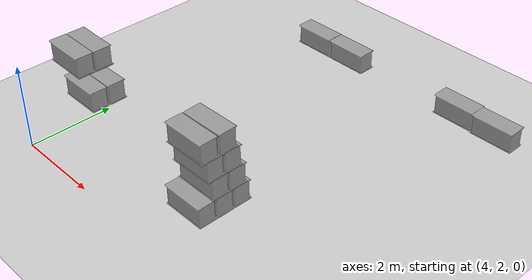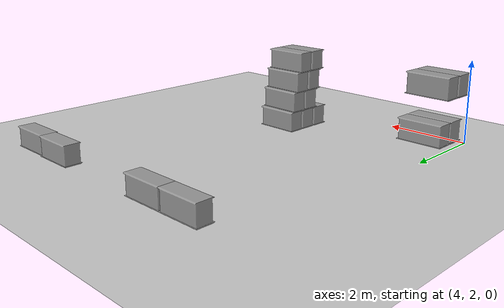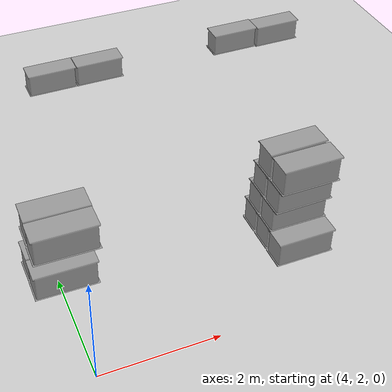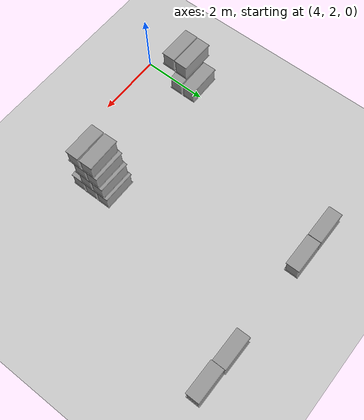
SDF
<sdf version="1.7">
 <world name="default">
  <model name="ground_plane">
   <static>1</static>
   <link name="link">
    <collision name="collision">
     <geometry><plane><normal>0 0 1</normal><size>100 100</size></plane></geometry>
     <surface><friction><ode><mu>100</mu><mu2>50</mu2></ode></friction></surface>
    </collision>
    <visual name="visual">
     <cast_shadows>0</cast_shadows>
     <geometry><plane><normal>0 0 1</normal><size>100 100</size></plane></geometry>
     <material>
      <script><uri>file://media/materials/scripts/gazebo.material</uri><name>Gazebo/Grey</name></script>
     </material>
    </visual>
   </link>
  </model>
  <model name="my_robot52">
   <link name="link_0">
    <inertial>
     <mass>1</mass>
     <inertia>
      <ixx>0.166667</ixx>
      <ixy>0</ixy>
      <ixz>0</ixz>
      <iyy>0.166667</iyy>
      <iyz>0</iyz>
      <izz>0.166667</izz>
     </inertia>
    </inertial>
    <visual name="visual">
     <geometry><mesh><uri>/home/cyun/cotton_box.stl</uri><scale>1 1 1</scale></mesh></geometry>
     <material>
      <lighting>1</lighting>
      <script><uri>file://media/materials/scripts/gazebo.material</uri><name>Gazebo/Grey</name></script>
      <shader type="pixel"><normal_map>__default__</normal_map></shader>
      <ambient>0.3 0.3 0.3 1</ambient>
      <diffuse>0.7 0.7 0.7 1</diffuse>
      <specular>0.01 0.01 0.01 1</specular>
      <emissive>0 0 0 1</emissive>
     </material>
    </visual>
    <collision name="collision">
     <geometry><mesh><uri>/home/cyun/cotton_box.stl</uri><scale>1 1 1</scale></mesh></geometry>
     <surface>
      <friction>
       <ode><mu>1</mu><mu2>1</mu2><fdir1>0 0 0</fdir1><slip1>0</slip1><slip2>0</slip2></ode>
       <torsional>
        <coefficient>1</coefficient>
        <patch_radius>0</patch_radius>
        <surface_radius>0</surface_radius>
        <use_patch_radius>1</use_patch_radius>
        <ode><slip>0</slip></ode>
       </torsional>
      </friction>
      <bounce><restitution_coefficient>0</restitution_coefficient><threshold>1e+06</threshold></bounce>
      <contact>
       <collide_without_contact>0</collide_without_contact>
       <collide_without_contact_bitmask>1</collide_without_contact_bitmask>
       <collide_bitmask>1</collide_bitmask>
       <ode>
        <soft_cfm>0</soft_cfm>
        <soft_erp>0.2</soft_erp>
        <kp>1e+13</kp>
        <kd>1</kd>
        <max_vel>0.01</max_vel>
        <min_depth>0</min_depth>
       </ode>
       <bullet>
        <split_impulse>1</split_impulse>
        <split_impulse_penetration_threshold>-0.01</split_impulse_penetration_threshold>
        <soft_cfm>0</soft_cfm>
        <soft_erp>0.2</soft_erp>
        <kp>1e+13</kp>
        <kd>1</kd>
       </bullet>
      </contact>
     </surface>
    </collision>
   </link>
   <static>0</static>
   <pose>4.00125 3.5004 0.50998 5e-06 3.8e-05 1.56337</pose>
  </model>
  <model name="my_robot53">
   <link name="link_0">
    <inertial>
     <mass>1</mass>
     <inertia>
      <ixx>0.166667</ixx>
      <ixy>0</ixy>
      <ixz>0</ixz>
      <iyy>0.166667</iyy>
      <iyz>0</iyz>
      <izz>0.166667</izz>
     </inertia>
    </inertial>
    <visual name="visual">
     <geometry><mesh><uri>/home/cyun/cotton_box.stl</uri><scale>1 1 1</scale></mesh></geometry>
     <material>
      <lighting>1</lighting>
      <script><uri>file://media/materials/scripts/gazebo.material</uri><name>Gazebo/Grey</name></script>
      <shader type="pixel"><normal_map>__default__</normal_map></shader>
      <ambient>0.3 0.3 0.3 1</ambient>
      <diffuse>0.7 0.7 0.7 1</diffuse>
      <specular>0.01 0.01 0.01 1</specular>
      <emissive>0 0 0 1</emissive>
     </material>
    </visual>
    <collision name="collision">
     <geometry><mesh><uri>/home/cyun/cotton_box.stl</uri><scale>1 1 1</scale></mesh></geometry>
     <surface>
      <friction>
       <ode><mu>1</mu><mu2>1</mu2><fdir1>0 0 0</fdir1><slip1>0</slip1><slip2>0</slip2></ode>
       <torsional>
        <coefficient>1</coefficient>
        <patch_radius>0</patch_radius>
        <surface_radius>0</surface_radius>
        <use_patch_radius>1</use_patch_radius>
        <ode><slip>0</slip></ode>
       </torsional>
      </friction>
      <bounce><restitution_coefficient>0</restitution_coefficient><threshold>1e+06</threshold></bounce>
      <contact>
       <collide_without_contact>0</collide_without_contact>
       <collide_without_contact_bitmask>1</collide_without_contact_bitmask>
       <collide_bitmask>1</collide_bitmask>
       <ode>
        <soft_cfm>0</soft_cfm>
        <soft_erp>0.2</soft_erp>
        <kp>1e+13</kp>
        <kd>1</kd>
        <max_vel>0.01</max_vel>
        <min_depth>0</min_depth>
       </ode>
       <bullet>
        <split_impulse>1</split_impulse>
        <split_impulse_penetration_threshold>-0.01</split_impulse_penetration_threshold>
        <soft_cfm>0</soft_cfm>
        <soft_erp>0.2</soft_erp>
        <kp>1e+13</kp>
        <kd>1</kd>
       </bullet>
      </contact>
     </surface>
    </collision>
   </link>
   <static>0</static>
   <pose>4.00282 3.95083 0.509973 5e-06 3e-06 1.58055</pose>
  </model>
  <model name="my_robot67">
   <link name="link_0">
    <inertial>
     <mass>1</mass>
     <inertia>
      <ixx>0.166667</ixx>
      <ixy>0</ixy>
      <ixz>0</ixz>
      <iyy>0.166667</iyy>
      <iyz>0</iyz>
      <izz>0.166667</izz>
     </inertia>
    </inertial>
    <visual name="visual">
     <geometry><mesh><uri>/home/cyun/cotton_box.stl</uri><scale>1 1 1</scale></mesh></geometry>
     <material>
      <lighting>1</lighting>
      <script><uri>file://media/materials/scripts/gazebo.material</uri><name>Gazebo/Grey</name></script>
      <shader type="pixel"><normal_map>__default__</normal_map></shader>
      <ambient>0.3 0.3 0.3 1</ambient>
      <diffuse>0.7 0.7 0.7 1</diffuse>
      <specular>0.01 0.01 0.01 1</specular>
      <emissive>0 0 0 1</emissive>
     </material>
    </visual>
    <collision name="collision">
     <geometry><mesh><uri>/home/cyun/cotton_box.stl</uri><scale>1 1 1</scale></mesh></geometry>
     <surface>
      <friction>
       <ode><mu>1</mu><mu2>1</mu2><fdir1>0 0 0</fdir1><slip1>0</slip1><slip2>0</slip2></ode>
       <torsional>
        <coefficient>1</coefficient>
        <patch_radius>0</patch_radius>
        <surface_radius>0</surface_radius>
        <use_patch_radius>1</use_patch_radius>
        <ode><slip>0</slip></ode>
       </torsional>
      </friction>
      <bounce><restitution_coefficient>0</restitution_coefficient><threshold>1e+06</threshold></bounce>
      <contact>
       <collide_without_contact>0</collide_without_contact>
       <collide_without_contact_bitmask>1</collide_without_contact_bitmask>
       <collide_bitmask>1</collide_bitmask>
       <ode>
        <soft_cfm>0</soft_cfm>
        <soft_erp>0.2</soft_erp>
        <kp>1e+13</kp>
        <kd>1</kd>
        <max_vel>0.01</max_vel>
        <min_depth>0</min_depth>
       </ode>
       <bullet>
        <split_impulse>1</split_impulse>
        <split_impulse_penetration_threshold>-0.01</split_impulse_penetration_threshold>
        <soft_cfm>0</soft_cfm>
        <soft_erp>0.2</soft_erp>
        <kp>1e+13</kp>
        <kd>1</kd>
       </bullet>
      </contact>
     </surface>
    </collision>
   </link>
   <static>0</static>
   <pose>4.00336 3.27687 1.49002 8e-06 5.9e-05 1.56228</pose>
  </model>
  <model name="my_robot68">
   <link name="link_0">
    <inertial>
     <mass>1</mass>
     <inertia>
      <ixx>0.166667</ixx>
      <ixy>0</ixy>
      <ixz>0</ixz>
      <iyy>0.166667</iyy>
      <iyz>0</iyz>
      <izz>0.166667</izz>
     </inertia>
    </inertial>
    <visual name="visual">
     <geometry><mesh><uri>/home/cyun/cotton_box.stl</uri><scale>1 1 1</scale></mesh></geometry>
     <material>
      <lighting>1</lighting>
      <script><uri>file://media/materials/scripts/gazebo.material</uri><name>Gazebo/Grey</name></script>
      <shader type="pixel"><normal_map>__default__</normal_map></shader>
      <ambient>0.3 0.3 0.3 1</ambient>
      <diffuse>0.7 0.7 0.7 1</diffuse>
      <specular>0.01 0.01 0.01 1</specular>
      <emissive>0 0 0 1</emissive>
     </material>
    </visual>
    <collision name="collision">
     <geometry><mesh><uri>/home/cyun/cotton_box.stl</uri><scale>1 1 1</scale></mesh></geometry>
     <surface>
      <friction>
       <ode><mu>1</mu><mu2>1</mu2><fdir1>0 0 0</fdir1><slip1>0</slip1><slip2>0</slip2></ode>
       <torsional>
        <coefficient>1</coefficient>
        <patch_radius>0</patch_radius>
        <surface_radius>0</surface_radius>
        <use_patch_radius>1</use_patch_radius>
        <ode><slip>0</slip></ode>
       </torsional>
      </friction>
      <bounce><restitution_coefficient>0</restitution_coefficient><threshold>1e+06</threshold></bounce>
      <contact>
       <collide_without_contact>0</collide_without_contact>
       <collide_without_contact_bitmask>1</collide_without_contact_bitmask>
       <collide_bitmask>1</collide_bitmask>
       <ode>
        <soft_cfm>0</soft_cfm>
        <soft_erp>0.2</soft_erp>
        <kp>1e+13</kp>
        <kd>1</kd>
        <max_vel>0.01</max_vel>
        <min_depth>0</min_depth>
       </ode>
       <bullet>
        <split_impulse>1</split_impulse>
        <split_impulse_penetration_threshold>-0.01</split_impulse_penetration_threshold>
        <soft_cfm>0</soft_cfm>
        <soft_erp>0.2</soft_erp>
        <kp>1e+13</kp>
        <kd>1</kd>
       </bullet>
      </contact>
     </surface>
    </collision>
   </link>
   <static>0</static>
   <pose>4.01435 3.71927 1.48996 6e-06 2.8e-05 1.5576</pose>
  </model>
  <model name="my_robot76">
   <link name="link_0">
    <inertial>
     <mass>1</mass>
     <inertia>
      <ixx>0.166667</ixx>
      <ixy>0</ixy>
      <ixz>0</ixz>
      <iyy>0.166667</iyy>
      <iyz>0</iyz>
      <izz>0.166667</izz>
     </inertia>
    </inertial>
    <visual name="visual">
     <geometry><mesh><uri>/home/cyun/cotton_box.stl</uri><scale>1 1 1</scale></mesh></geometry>
     <material>
      <lighting>1</lighting>
      <script><uri>file://media/materials/scripts/gazebo.material</uri><name>Gazebo/Grey</name></script>
      <shader type="pixel"><normal_map>__default__</normal_map></shader>
      <ambient>0.3 0.3 0.3 1</ambient>
      <diffuse>0.7 0.7 0.7 1</diffuse>
      <specular>0.01 0.01 0.01 1</specular>
      <emissive>0 0 0 1</emissive>
     </material>
    </visual>
    <collision name="collision">
     <geometry><mesh><uri>/home/cyun/cotton_box.stl</uri><scale>1 1 1</scale></mesh></geometry>
     <surface>
      <friction>
       <ode><mu>1</mu><mu2>1</mu2><fdir1>0 0 0</fdir1><slip1>0</slip1><slip2>0</slip2></ode>
       <torsional>
        <coefficient>1</coefficient>
        <patch_radius>0</patch_radius>
        <surface_radius>0</surface_radius>
        <use_patch_radius>1</use_patch_radius>
        <ode><slip>0</slip></ode>
       </torsional>
      </friction>
      <bounce><restitution_coefficient>0</restitution_coefficient><threshold>1e+06</threshold></bounce>
      <contact>
       <collide_without_contact>0</collide_without_contact>
       <collide_without_contact_bitmask>1</collide_without_contact_bitmask>
       <collide_bitmask>1</collide_bitmask>
       <ode>
        <soft_cfm>0</soft_cfm>
        <soft_erp>0.2</soft_erp>
        <kp>1e+13</kp>
        <kd>1</kd>
        <max_vel>0.01</max_vel>
        <min_depth>0</min_depth>
       </ode>
       <bullet>
        <split_impulse>1</split_impulse>
        <split_impulse_penetration_threshold>-0.01</split_impulse_penetration_threshold>
        <soft_cfm>0</soft_cfm>
        <soft_erp>0.2</soft_erp>
        <kp>1e+13</kp>
        <kd>1</kd>
       </bullet>
      </contact>
     </surface>
    </collision>
   </link>
   <static>0</static>
   <pose>7.99823 3.15203 0.019904 2e-05 2.1e-05 1.57251</pose>
  </model>
  <model name="my_robot77">
   <link name="link_0">
    <inertial>
     <mass>1</mass>
     <inertia>
      <ixx>0.166667</ixx>
      <ixy>0</ixy>
      <ixz>0</ixz>
      <iyy>0.166667</iyy>
      <iyz>0</iyz>
      <izz>0.166667</izz>
     </inertia>
    </inertial>
    <visual name="visual">
     <geometry><mesh><uri>/home/cyun/cotton_box.stl</uri><scale>1 1 1</scale></mesh></geometry>
     <material>
      <lighting>1</lighting>
      <script><uri>file://media/materials/scripts/gazebo.material</uri><name>Gazebo/Grey</name></script>
      <shader type="pixel"><normal_map>__default__</normal_map></shader>
      <ambient>0.3 0.3 0.3 1</ambient>
      <diffuse>0.7 0.7 0.7 1</diffuse>
      <specular>0.01 0.01 0.01 1</specular>
      <emissive>0 0 0 1</emissive>
     </material>
    </visual>
    <collision name="collision">
     <geometry><mesh><uri>/home/cyun/cotton_box.stl</uri><scale>1 1 1</scale></mesh></geometry>
     <surface>
      <friction>
       <ode><mu>1</mu><mu2>1</mu2><fdir1>0 0 0</fdir1><slip1>0</slip1><slip2>0</slip2></ode>
       <torsional>
        <coefficient>1</coefficient>
        <patch_radius>0</patch_radius>
        <surface_radius>0</surface_radius>
        <use_patch_radius>1</use_patch_radius>
        <ode><slip>0</slip></ode>
       </torsional>
      </friction>
      <bounce><restitution_coefficient>0</restitution_coefficient><threshold>1e+06</threshold></bounce>
      <contact>
       <collide_without_contact>0</collide_without_contact>
       <collide_without_contact_bitmask>1</collide_without_contact_bitmask>
       <collide_bitmask>1</collide_bitmask>
       <ode>
        <soft_cfm>0</soft_cfm>
        <soft_erp>0.2</soft_erp>
        <kp>1e+13</kp>
        <kd>1</kd>
        <max_vel>0.01</max_vel>
        <min_depth>0</min_depth>
       </ode>
       <bullet>
        <split_impulse>1</split_impulse>
        <split_impulse_penetration_threshold>-0.01</split_impulse_penetration_threshold>
        <soft_cfm>0</soft_cfm>
        <soft_erp>0.2</soft_erp>
        <kp>1e+13</kp>
        <kd>1</kd>
       </bullet>
      </contact>
     </surface>
    </collision>
   </link>
   <static>0</static>
   <pose>8.00124 3.6 0.019968 -1.7e-05 1.9e-05 1.57513</pose>
  </model>
  <model name="my_robot78">
   <link name="link_0">
    <inertial>
     <mass>1</mass>
     <inertia>
      <ixx>0.166667</ixx>
      <ixy>0</ixy>
      <ixz>0</ixz>
      <iyy>0.166667</iyy>
      <iyz>0</iyz>
      <izz>0.166667</izz>
     </inertia>
    </inertial>
    <visual name="visual">
     <geometry><mesh><uri>/home/cyun/cotton_box.stl</uri><scale>1 1 1</scale></mesh></geometry>
     <material>
      <lighting>1</lighting>
      <script><uri>file://media/materials/scripts/gazebo.material</uri><name>Gazebo/Grey</name></script>
      <shader type="pixel"><normal_map>__default__</normal_map></shader>
      <ambient>0.3 0.3 0.3 1</ambient>
      <diffuse>0.7 0.7 0.7 1</diffuse>
      <specular>0.01 0.01 0.01 1</specular>
      <emissive>0 0 0 1</emissive>
     </material>
    </visual>
    <collision name="collision">
     <geometry><mesh><uri>/home/cyun/cotton_box.stl</uri><scale>1 1 1</scale></mesh></geometry>
     <surface>
      <friction>
       <ode><mu>1</mu><mu2>1</mu2><fdir1>0 0 0</fdir1><slip1>0</slip1><slip2>0</slip2></ode>
       <torsional>
        <coefficient>1</coefficient>
        <patch_radius>0</patch_radius>
        <surface_radius>0</surface_radius>
        <use_patch_radius>1</use_patch_radius>
        <ode><slip>0</slip></ode>
       </torsional>
      </friction>
      <bounce><restitution_coefficient>0</restitution_coefficient><threshold>1e+06</threshold></bounce>
      <contact>
       <collide_without_contact>0</collide_without_contact>
       <collide_without_contact_bitmask>1</collide_without_contact_bitmask>
       <collide_bitmask>1</collide_bitmask>
       <ode>
        <soft_cfm>0</soft_cfm>
        <soft_erp>0.2</soft_erp>
        <kp>1e+13</kp>
        <kd>1</kd>
        <max_vel>0.01</max_vel>
        <min_depth>0</min_depth>
       </ode>
       <bullet>
        <split_impulse>1</split_impulse>
        <split_impulse_penetration_threshold>-0.01</split_impulse_penetration_threshold>
        <soft_cfm>0</soft_cfm>
        <soft_erp>0.2</soft_erp>
        <kp>1e+13</kp>
        <kd>1</kd>
       </bullet>
      </contact>
     </surface>
    </collision>
   </link>
   <static>0</static>
   <pose>8.00033 4.04781 0.019935 -5e-06 4.2e-05 1.57305</pose>
  </model>
  <model name="my_robot86">
   <link name="link_0">
    <inertial>
     <mass>1</mass>
     <inertia>
      <ixx>0.166667</ixx>
      <ixy>0</ixy>
      <ixz>0</ixz>
      <iyy>0.166667</iyy>
      <iyz>0</iyz>
      <izz>0.166667</izz>
     </inertia>
    </inertial>
    <visual name="visual">
     <geometry><mesh><uri>/home/cyun/cotton_box.stl</uri><scale>1 1 1</scale></mesh></geometry>
     <material>
      <lighting>1</lighting>
      <script><uri>file://media/materials/scripts/gazebo.material</uri><name>Gazebo/Grey</name></script>
      <shader type="pixel"><normal_map>__default__</normal_map></shader>
      <ambient>0.3 0.3 0.3 1</ambient>
      <diffuse>0.7 0.7 0.7 1</diffuse>
      <specular>0.01 0.01 0.01 1</specular>
      <emissive>0 0 0 1</emissive>
     </material>
    </visual>
    <collision name="collision">
     <geometry><mesh><uri>/home/cyun/cotton_box.stl</uri><scale>1 1 1</scale></mesh></geometry>
     <surface>
      <friction>
       <ode><mu>1</mu><mu2>1</mu2><fdir1>0 0 0</fdir1><slip1>0</slip1><slip2>0</slip2></ode>
       <torsional>
        <coefficient>1</coefficient>
        <patch_radius>0</patch_radius>
        <surface_radius>0</surface_radius>
        <use_patch_radius>1</use_patch_radius>
        <ode><slip>0</slip></ode>
       </torsional>
      </friction>
      <bounce><restitution_coefficient>0</restitution_coefficient><threshold>1e+06</threshold></bounce>
      <contact>
       <collide_without_contact>0</collide_without_contact>
       <collide_without_contact_bitmask>1</collide_without_contact_bitmask>
       <collide_bitmask>1</collide_bitmask>
       <ode>
        <soft_cfm>0</soft_cfm>
        <soft_erp>0.2</soft_erp>
        <kp>1e+13</kp>
        <kd>1</kd>
        <max_vel>0.01</max_vel>
        <min_depth>0</min_depth>
       </ode>
       <bullet>
        <split_impulse>1</split_impulse>
        <split_impulse_penetration_threshold>-0.01</split_impulse_penetration_threshold>
        <soft_cfm>0</soft_cfm>
        <soft_erp>0.2</soft_erp>
        <kp>1e+13</kp>
        <kd>1</kd>
       </bullet>
      </contact>
     </surface>
    </collision>
   </link>
   <static>0</static>
   <pose>8.00232 3.50207 0.509954 -1.4e-05 4e-05 1.56976</pose>
  </model>
  <model name="my_robot87">
   <link name="link_0">
    <inertial>
     <mass>1</mass>
     <inertia>
      <ixx>0.166667</ixx>
      <ixy>0</ixy>
      <ixz>0</ixz>
      <iyy>0.166667</iyy>
      <iyz>0</iyz>
      <izz>0.166667</izz>
     </inertia>
    </inertial>
    <visual name="visual">
     <geometry><mesh><uri>/home/cyun/cotton_box.stl</uri><scale>1 1 1</scale></mesh></geometry>
     <material>
      <lighting>1</lighting>
      <script><uri>file://media/materials/scripts/gazebo.material</uri><name>Gazebo/Grey</name></script>
      <shader type="pixel"><normal_map>__default__</normal_map></shader>
      <ambient>0.3 0.3 0.3 1</ambient>
      <diffuse>0.7 0.7 0.7 1</diffuse>
      <specular>0.01 0.01 0.01 1</specular>
      <emissive>0 0 0 1</emissive>
     </material>
    </visual>
    <collision name="collision">
     <geometry><mesh><uri>/home/cyun/cotton_box.stl</uri><scale>1 1 1</scale></mesh></geometry>
     <surface>
      <friction>
       <ode><mu>1</mu><mu2>1</mu2><fdir1>0 0 0</fdir1><slip1>0</slip1><slip2>0</slip2></ode>
       <torsional>
        <coefficient>1</coefficient>
        <patch_radius>0</patch_radius>
        <surface_radius>0</surface_radius>
        <use_patch_radius>1</use_patch_radius>
        <ode><slip>0</slip></ode>
       </torsional>
      </friction>
      <bounce><restitution_coefficient>0</restitution_coefficient><threshold>1e+06</threshold></bounce>
      <contact>
       <collide_without_contact>0</collide_without_contact>
       <collide_without_contact_bitmask>1</collide_without_contact_bitmask>
       <collide_bitmask>1</collide_bitmask>
       <ode>
        <soft_cfm>0</soft_cfm>
        <soft_erp>0.2</soft_erp>
        <kp>1e+13</kp>
        <kd>1</kd>
        <max_vel>0.01</max_vel>
        <min_depth>0</min_depth>
       </ode>
       <bullet>
        <split_impulse>1</split_impulse>
        <split_impulse_penetration_threshold>-0.01</split_impulse_penetration_threshold>
        <soft_cfm>0</soft_cfm>
        <soft_erp>0.2</soft_erp>
        <kp>1e+13</kp>
        <kd>1</kd>
       </bullet>
      </contact>
     </surface>
    </collision>
   </link>
   <static>0</static>
   <pose>8.00155 3.95109 0.509952 -1.8e-05 7.6e-05 1.56308</pose>
  </model>
  <model name="my_robot94">
   <link name="link_0">
    <inertial>
     <mass>1</mass>
     <inertia>
      <ixx>0.166667</ixx>
      <ixy>0</ixy>
      <ixz>0</ixz>
      <iyy>0.166667</iyy>
      <iyz>0</iyz>
      <izz>0.166667</izz>
     </inertia>
    </inertial>
    <visual name="visual">
     <geometry><mesh><uri>/home/cyun/cotton_box.stl</uri><scale>1 1 1</scale></mesh></geometry>
     <material>
      <lighting>1</lighting>
      <script><uri>file://media/materials/scripts/gazebo.material</uri><name>Gazebo/Grey</name></script>
      <shader type="pixel"><normal_map>__default__</normal_map></shader>
      <ambient>0.3 0.3 0.3 1</ambient>
      <diffuse>0.7 0.7 0.7 1</diffuse>
      <specular>0.01 0.01 0.01 1</specular>
      <emissive>0 0 0 1</emissive>
     </material>
    </visual>
    <collision name="collision">
     <geometry><mesh><uri>/home/cyun/cotton_box.stl</uri><scale>1 1 1</scale></mesh></geometry>
     <surface>
      <friction>
       <ode><mu>1</mu><mu2>1</mu2><fdir1>0 0 0</fdir1><slip1>0</slip1><slip2>0</slip2></ode>
       <torsional>
        <coefficient>1</coefficient>
        <patch_radius>0</patch_radius>
        <surface_radius>0</surface_radius>
        <use_patch_radius>1</use_patch_radius>
        <ode><slip>0</slip></ode>
       </torsional>
      </friction>
      <bounce><restitution_coefficient>0</restitution_coefficient><threshold>1e+06</threshold></bounce>
      <contact>
       <collide_without_contact>0</collide_without_contact>
       <collide_without_contact_bitmask>1</collide_without_contact_bitmask>
       <collide_bitmask>1</collide_bitmask>
       <ode>
        <soft_cfm>0</soft_cfm>
        <soft_erp>0.2</soft_erp>
        <kp>1e+13</kp>
        <kd>1</kd>
        <max_vel>0.01</max_vel>
        <min_depth>0</min_depth>
       </ode>
       <bullet>
        <split_impulse>1</split_impulse>
        <split_impulse_penetration_threshold>-0.01</split_impulse_penetration_threshold>
        <soft_cfm>0</soft_cfm>
        <soft_erp>0.2</soft_erp>
        <kp>1e+13</kp>
        <kd>1</kd>
       </bullet>
      </contact>
     </surface>
    </collision>
   </link>
   <static>0</static>
   <pose>7.99998 3.39585 0.999949 -1.5e-05 5.1e-05 1.59144</pose>
  </model>
  <model name="my_robot95">
   <link name="link_0">
    <inertial>
     <mass>1</mass>
     <inertia>
      <ixx>0.166667</ixx>
      <ixy>0</ixy>
      <ixz>0</ixz>
      <iyy>0.166667</iyy>
      <iyz>0</iyz>
      <izz>0.166667</izz>
     </inertia>
    </inertial>
    <visual name="visual">
     <geometry><mesh><uri>/home/cyun/cotton_box.stl</uri><scale>1 1 1</scale></mesh></geometry>
     <material>
      <lighting>1</lighting>
      <script><uri>file://media/materials/scripts/gazebo.material</uri><name>Gazebo/Grey</name></script>
      <shader type="pixel"><normal_map>__default__</normal_map></shader>
      <ambient>0.3 0.3 0.3 1</ambient>
      <diffuse>0.7 0.7 0.7 1</diffuse>
      <specular>0.01 0.01 0.01 1</specular>
      <emissive>0 0 0 1</emissive>
     </material>
    </visual>
    <collision name="collision">
     <geometry><mesh><uri>/home/cyun/cotton_box.stl</uri><scale>1 1 1</scale></mesh></geometry>
     <surface>
      <friction>
       <ode><mu>1</mu><mu2>1</mu2><fdir1>0 0 0</fdir1><slip1>0</slip1><slip2>0</slip2></ode>
       <torsional>
        <coefficient>1</coefficient>
        <patch_radius>0</patch_radius>
        <surface_radius>0</surface_radius>
        <use_patch_radius>1</use_patch_radius>
        <ode><slip>0</slip></ode>
       </torsional>
      </friction>
      <bounce><restitution_coefficient>0</restitution_coefficient><threshold>1e+06</threshold></bounce>
      <contact>
       <collide_without_contact>0</collide_without_contact>
       <collide_without_contact_bitmask>1</collide_without_contact_bitmask>
       <collide_bitmask>1</collide_bitmask>
       <ode>
        <soft_cfm>0</soft_cfm>
        <soft_erp>0.2</soft_erp>
        <kp>1e+13</kp>
        <kd>1</kd>
        <max_vel>0.01</max_vel>
        <min_depth>0</min_depth>
       </ode>
       <bullet>
        <split_impulse>1</split_impulse>
        <split_impulse_penetration_threshold>-0.01</split_impulse_penetration_threshold>
        <soft_cfm>0</soft_cfm>
        <soft_erp>0.2</soft_erp>
        <kp>1e+13</kp>
        <kd>1</kd>
       </bullet>
      </contact>
     </surface>
    </collision>
   </link>
   <static>0</static>
   <pose>7.99834 3.84488 0.999958 -1.7e-05 0.000112 1.57531</pose>
  </model>
  <model name="my_robot101">
   <link name="link_0">
    <inertial>
     <mass>1</mass>
     <inertia>
      <ixx>0.166667</ixx>
      <ixy>0</ixy>
      <ixz>0</ixz>
      <iyy>0.166667</iyy>
      <iyz>0</iyz>
      <izz>0.166667</izz>
     </inertia>
    </inertial>
    <visual name="visual">
     <geometry><mesh><uri>/home/cyun/cotton_box.stl</uri><scale>1 1 1</scale></mesh></geometry>
     <material>
      <lighting>1</lighting>
      <script><uri>file://media/materials/scripts/gazebo.material</uri><name>Gazebo/Grey</name></script>
      <shader type="pixel"><normal_map>__default__</normal_map></shader>
      <ambient>0.3 0.3 0.3 1</ambient>
      <diffuse>0.7 0.7 0.7 1</diffuse>
      <specular>0.01 0.01 0.01 1</specular>
      <emissive>0 0 0 1</emissive>
     </material>
    </visual>
    <collision name="collision">
     <geometry><mesh><uri>/home/cyun/cotton_box.stl</uri><scale>1 1 1</scale></mesh></geometry>
     <surface>
      <friction>
       <ode><mu>1</mu><mu2>1</mu2><fdir1>0 0 0</fdir1><slip1>0</slip1><slip2>0</slip2></ode>
       <torsional>
        <coefficient>1</coefficient>
        <patch_radius>0</patch_radius>
        <surface_radius>0</surface_radius>
        <use_patch_radius>1</use_patch_radius>
        <ode><slip>0</slip></ode>
       </torsional>
      </friction>
      <bounce><restitution_coefficient>0</restitution_coefficient><threshold>1e+06</threshold></bounce>
      <contact>
       <collide_without_contact>0</collide_without_contact>
       <collide_without_contact_bitmask>1</collide_without_contact_bitmask>
       <collide_bitmask>1</collide_bitmask>
       <ode>
        <soft_cfm>0</soft_cfm>
        <soft_erp>0.2</soft_erp>
        <kp>1e+13</kp>
        <kd>1</kd>
        <max_vel>0.01</max_vel>
        <min_depth>0</min_depth>
       </ode>
       <bullet>
        <split_impulse>1</split_impulse>
        <split_impulse_penetration_threshold>-0.01</split_impulse_penetration_threshold>
        <soft_cfm>0</soft_cfm>
        <soft_erp>0.2</soft_erp>
        <kp>1e+13</kp>
        <kd>1</kd>
       </bullet>
      </contact>
     </surface>
    </collision>
   </link>
   <static>0</static>
   <pose>8.00441 3.27555 1.49001 2.2e-05 3.9e-05 1.57585</pose>
  </model>
  <model name="my_robot102">
   <link name="link_0">
    <inertial>
     <mass>1</mass>
     <inertia>
      <ixx>0.166667</ixx>
      <ixy>0</ixy>
      <ixz>0</ixz>
      <iyy>0.166667</iyy>
      <iyz>0</iyz>
      <izz>0.166667</izz>
     </inertia>
    </inertial>
    <visual name="visual">
     <geometry><mesh><uri>/home/cyun/cotton_box.stl</uri><scale>1 1 1</scale></mesh></geometry>
     <material>
      <lighting>1</lighting>
      <script><uri>file://media/materials/scripts/gazebo.material</uri><name>Gazebo/Grey</name></script>
      <shader type="pixel"><normal_map>__default__</normal_map></shader>
      <ambient>0.3 0.3 0.3 1</ambient>
      <diffuse>0.7 0.7 0.7 1</diffuse>
      <specular>0.01 0.01 0.01 1</specular>
      <emissive>0 0 0 1</emissive>
     </material>
    </visual>
    <collision name="collision">
     <geometry><mesh><uri>/home/cyun/cotton_box.stl</uri><scale>1 1 1</scale></mesh></geometry>
     <surface>
      <friction>
       <ode><mu>1</mu><mu2>1</mu2><fdir1>0 0 0</fdir1><slip1>0</slip1><slip2>0</slip2></ode>
       <torsional>
        <coefficient>1</coefficient>
        <patch_radius>0</patch_radius>
        <surface_radius>0</surface_radius>
        <use_patch_radius>1</use_patch_radius>
        <ode><slip>0</slip></ode>
       </torsional>
      </friction>
      <bounce><restitution_coefficient>0</restitution_coefficient><threshold>1e+06</threshold></bounce>
      <contact>
       <collide_without_contact>0</collide_without_contact>
       <collide_without_contact_bitmask>1</collide_without_contact_bitmask>
       <collide_bitmask>1</collide_bitmask>
       <ode>
        <soft_cfm>0</soft_cfm>
        <soft_erp>0.2</soft_erp>
        <kp>1e+13</kp>
        <kd>1</kd>
        <max_vel>0.01</max_vel>
        <min_depth>0</min_depth>
       </ode>
       <bullet>
        <split_impulse>1</split_impulse>
        <split_impulse_penetration_threshold>-0.01</split_impulse_penetration_threshold>
        <soft_cfm>0</soft_cfm>
        <soft_erp>0.2</soft_erp>
        <kp>1e+13</kp>
        <kd>1</kd>
       </bullet>
      </contact>
     </surface>
    </collision>
   </link>
   <static>0</static>
   <pose>7.99698 3.73664 1.48998 -1.4e-05 0.000157 1.59211</pose>
  </model>
  <model name="my_robot1_clone_4_clone_clone_5_clone">
   <link name="link_0">
    <inertial>
     <mass>1</mass>
     <inertia>
      <ixx>0.166667</ixx>
      <ixy>0</ixy>
      <ixz>0</ixz>
      <iyy>0.166667</iyy>
      <iyz>0</iyz>
      <izz>0.166667</izz>
     </inertia>
    </inertial>
    <visual name="visual">
     <geometry><mesh><uri>/home/cyun/cotton_box.stl</uri><scale>1 1 1</scale></mesh></geometry>
     <material>
      <lighting>1</lighting>
      <script><uri>file://media/materials/scripts/gazebo.material</uri><name>Gazebo/Grey</name></script>
      <shader type="pixel"><normal_map>__default__</normal_map></shader>
      <ambient>0.3 0.3 0.3 1</ambient>
      <diffuse>0.7 0.7 0.7 1</diffuse>
      <specular>0.01 0.01 0.01 1</specular>
      <emissive>0 0 0 1</emissive>
     </material>
    </visual>
    <collision name="collision">
     <geometry><mesh><uri>/home/cyun/cotton_box.stl</uri><scale>1 1 1</scale></mesh></geometry>
     <surface>
      <friction>
       <ode><mu>1</mu><mu2>1</mu2><fdir1>0 0 0</fdir1><slip1>0</slip1><slip2>0</slip2></ode>
       <torsional>
        <coefficient>1</coefficient>
        <patch_radius>0</patch_radius>
        <surface_radius>0</surface_radius>
        <use_patch_radius>1</use_patch_radius>
        <ode><slip>0</slip></ode>
       </torsional>
      </friction>
      <bounce><restitution_coefficient>0</restitution_coefficient><threshold>1e+06</threshold></bounce>
      <contact>
       <collide_without_contact>0</collide_without_contact>
       <collide_without_contact_bitmask>1</collide_without_contact_bitmask>
       <collide_bitmask>1</collide_bitmask>
       <ode>
        <soft_cfm>0</soft_cfm>
        <soft_erp>0.2</soft_erp>
        <kp>1e+13</kp>
        <kd>1</kd>
        <max_vel>0.01</max_vel>
        <min_depth>0</min_depth>
       </ode>
       <bullet>
        <split_impulse>1</split_impulse>
        <split_impulse_penetration_threshold>-0.01</split_impulse_penetration_threshold>
        <soft_cfm>0</soft_cfm>
        <soft_erp>0.2</soft_erp>
        <kp>1e+13</kp>
        <kd>1</kd>
       </bullet>
      </contact>
     </surface>
    </collision>
   </link>
   <static>0</static>
   <pose>5.42517 9.41146 0.019992 -1.6e-05 0 1.57499</pose>
  </model>
  <model name="my_robot1_clone_4_clone_clone_5_clone_0">
   <link name="link_0">
    <inertial>
     <mass>1</mass>
     <inertia>
      <ixx>0.166667</ixx>
      <ixy>0</ixy>
      <ixz>0</ixz>
      <iyy>0.166667</iyy>
      <iyz>0</iyz>
      <izz>0.166667</izz>
     </inertia>
    </inertial>
    <visual name="visual">
     <geometry><mesh><uri>/home/cyun/cotton_box.stl</uri><scale>1 1 1</scale></mesh></geometry>
     <material>
      <lighting>1</lighting>
      <script><uri>file://media/materials/scripts/gazebo.material</uri><name>Gazebo/Grey</name></script>
      <shader type="pixel"><normal_map>__default__</normal_map></shader>
      <ambient>0.3 0.3 0.3 1</ambient>
      <diffuse>0.7 0.7 0.7 1</diffuse>
      <specular>0.01 0.01 0.01 1</specular>
      <emissive>0 0 0 1</emissive>
     </material>
    </visual>
    <collision name="collision">
     <geometry><mesh><uri>/home/cyun/cotton_box.stl</uri><scale>1 1 1</scale></mesh></geometry>
     <surface>
      <friction>
       <ode><mu>1</mu><mu2>1</mu2><fdir1>0 0 0</fdir1><slip1>0</slip1><slip2>0</slip2></ode>
       <torsional>
        <coefficient>1</coefficient>
        <patch_radius>0</patch_radius>
        <surface_radius>0</surface_radius>
        <use_patch_radius>1</use_patch_radius>
        <ode><slip>0</slip></ode>
       </torsional>
      </friction>
      <bounce><restitution_coefficient>0</restitution_coefficient><threshold>1e+06</threshold></bounce>
      <contact>
       <collide_without_contact>0</collide_without_contact>
       <collide_without_contact_bitmask>1</collide_without_contact_bitmask>
       <collide_bitmask>1</collide_bitmask>
       <ode>
        <soft_cfm>0</soft_cfm>
        <soft_erp>0.2</soft_erp>
        <kp>1e+13</kp>
        <kd>1</kd>
        <max_vel>0.01</max_vel>
        <min_depth>0</min_depth>
       </ode>
       <bullet>
        <split_impulse>1</split_impulse>
        <split_impulse_penetration_threshold>-0.01</split_impulse_penetration_threshold>
        <soft_cfm>0</soft_cfm>
        <soft_erp>0.2</soft_erp>
        <kp>1e+13</kp>
        <kd>1</kd>
       </bullet>
      </contact>
     </surface>
    </collision>
   </link>
   <static>0</static>
   <pose>6.47511 9.41316 0.019992 -1.6e-05 0 1.57499</pose>
  </model>
  <model name="my_robot1_clone_4_clone_clone_5_clone_1">
   <link name="link_0">
    <inertial>
     <mass>1</mass>
     <inertia>
      <ixx>0.166667</ixx>
      <ixy>0</ixy>
      <ixz>0</ixz>
      <iyy>0.166667</iyy>
      <iyz>0</iyz>
      <izz>0.166667</izz>
     </inertia>
    </inertial>
    <visual name="visual">
     <geometry><mesh><uri>/home/cyun/cotton_box.stl</uri><scale>1 1 1</scale></mesh></geometry>
     <material>
      <lighting>1</lighting>
      <script><uri>file://media/materials/scripts/gazebo.material</uri><name>Gazebo/Grey</name></script>
      <shader type="pixel"><normal_map>__default__</normal_map></shader>
      <ambient>0.3 0.3 0.3 1</ambient>
      <diffuse>0.7 0.7 0.7 1</diffuse>
      <specular>0.01 0.01 0.01 1</specular>
      <emissive>0 0 0 1</emissive>
     </material>
    </visual>
    <collision name="collision">
     <geometry><mesh><uri>/home/cyun/cotton_box.stl</uri><scale>1 1 1</scale></mesh></geometry>
     <surface>
      <friction>
       <ode><mu>1</mu><mu2>1</mu2><fdir1>0 0 0</fdir1><slip1>0</slip1><slip2>0</slip2></ode>
       <torsional>
        <coefficient>1</coefficient>
        <patch_radius>0</patch_radius>
        <surface_radius>0</surface_radius>
        <use_patch_radius>1</use_patch_radius>
        <ode><slip>0</slip></ode>
       </torsional>
      </friction>
      <bounce><restitution_coefficient>0</restitution_coefficient><threshold>1e+06</threshold></bounce>
      <contact>
       <collide_without_contact>0</collide_without_contact>
       <collide_without_contact_bitmask>1</collide_without_contact_bitmask>
       <collide_bitmask>1</collide_bitmask>
       <ode>
        <soft_cfm>0</soft_cfm>
        <soft_erp>0.2</soft_erp>
        <kp>1e+13</kp>
        <kd>1</kd>
        <max_vel>0.01</max_vel>
        <min_depth>0</min_depth>
       </ode>
       <bullet>
        <split_impulse>1</split_impulse>
        <split_impulse_penetration_threshold>-0.01</split_impulse_penetration_threshold>
        <soft_cfm>0</soft_cfm>
        <soft_erp>0.2</soft_erp>
        <kp>1e+13</kp>
        <kd>1</kd>
       </bullet>
      </contact>
     </surface>
    </collision>
   </link>
   <static>0</static>
   <pose>9.69179 9.43095 0.019992 -1.6e-05 0 1.57499</pose>
  </model>
  <model name="my_robot1_clone_4_clone_clone_5_clone_2">
   <link name="link_0">
    <inertial>
     <mass>1</mass>
     <inertia>
      <ixx>0.166667</ixx>
      <ixy>0</ixy>
      <ixz>0</ixz>
      <iyy>0.166667</iyy>
      <iyz>0</iyz>
      <izz>0.166667</izz>
     </inertia>
    </inertial>
    <visual name="visual">
     <geometry><mesh><uri>/home/cyun/cotton_box.stl</uri><scale>1 1 1</scale></mesh></geometry>
     <material>
      <lighting>1</lighting>
      <script><uri>file://media/materials/scripts/gazebo.material</uri><name>Gazebo/Grey</name></script>
      <shader type="pixel"><normal_map>__default__</normal_map></shader>
      <ambient>0.3 0.3 0.3 1</ambient>
      <diffuse>0.7 0.7 0.7 1</diffuse>
      <specular>0.01 0.01 0.01 1</specular>
      <emissive>0 0 0 1</emissive>
     </material>
    </visual>
    <collision name="collision">
     <geometry><mesh><uri>/home/cyun/cotton_box.stl</uri><scale>1 1 1</scale></mesh></geometry>
     <surface>
      <friction>
       <ode><mu>1</mu><mu2>1</mu2><fdir1>0 0 0</fdir1><slip1>0</slip1><slip2>0</slip2></ode>
       <torsional>
        <coefficient>1</coefficient>
        <patch_radius>0</patch_radius>
        <surface_radius>0</surface_radius>
        <use_patch_radius>1</use_patch_radius>
        <ode><slip>0</slip></ode>
       </torsional>
      </friction>
      <bounce><restitution_coefficient>0</restitution_coefficient><threshold>1e+06</threshold></bounce>
      <contact>
       <collide_without_contact>0</collide_without_contact>
       <collide_without_contact_bitmask>1</collide_without_contact_bitmask>
       <collide_bitmask>1</collide_bitmask>
       <ode>
        <soft_cfm>0</soft_cfm>
        <soft_erp>0.2</soft_erp>
        <kp>1e+13</kp>
        <kd>1</kd>
        <max_vel>0.01</max_vel>
        <min_depth>0</min_depth>
       </ode>
       <bullet>
        <split_impulse>1</split_impulse>
        <split_impulse_penetration_threshold>-0.01</split_impulse_penetration_threshold>
        <soft_cfm>0</soft_cfm>
        <soft_erp>0.2</soft_erp>
        <kp>1e+13</kp>
        <kd>1</kd>
       </bullet>
      </contact>
     </surface>
    </collision>
   </link>
   <static>0</static>
   <pose>10.7332 9.40244 0.019992 -1.6e-05 0 1.57499</pose>
  </model>
 </world>
</sdf>
